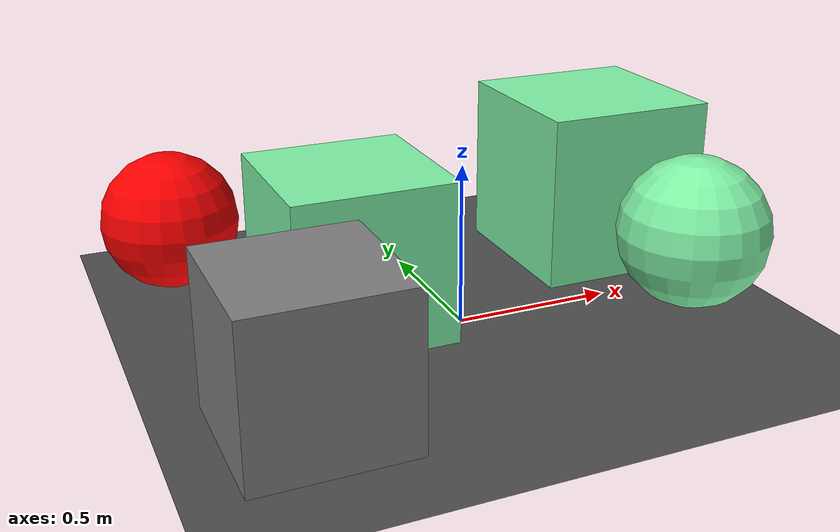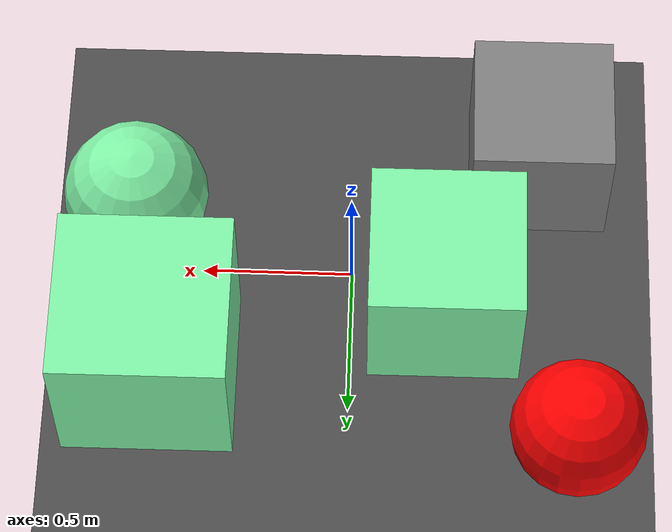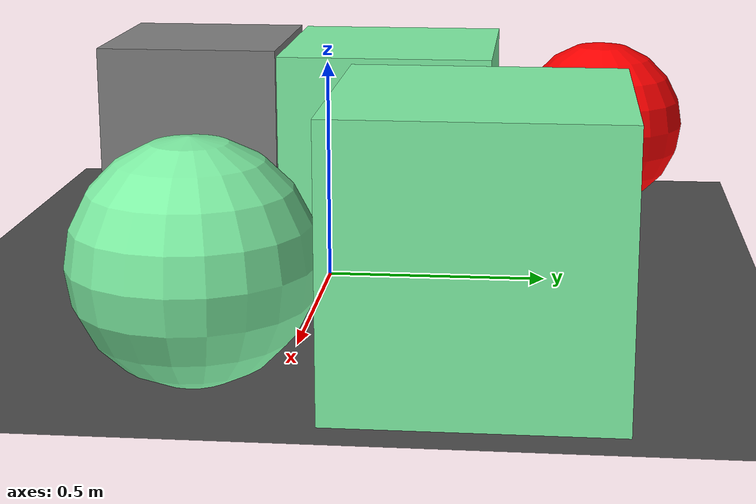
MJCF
<mujoco>
   <asset>
      <texture name="builtin_checker" builtin="checker" type="2d" rgb1="1 1 0" rgb2="0 0 1" width="200" height="200"/>
      <texture name="builtin_gradient" builtin="gradient" rgb1="0 .9 .3" rgb2="1 1 1" width="200" height="200"/>
      <texture name="builtin_flat" builtin="flat" rgb1="1 0 0" rgb2="1 0 0"  width="200" height="200"/>

      <material name="checker_mat" reflectance="0.9" texrepeat="3 3" texture="builtin_checker" texuniform="false" />
      <material name="gradient_mat" reflectance="1" texrepeat="1 1" texture="builtin_gradient" texuniform="true"/>
      <material name="flat_mat" reflectance="1" texrepeat="1 1" texture="builtin_flat" texuniform="true"/>
   </asset>

   <worldbody>
      <light diffuse=".9 .9 .9" pos="0 0 3" dir="0 0 -1"/>
     <geom type="plane" size="1 1 0.1" rgba="0.3 0.3 0.3 1"/>
<body pos="-0.74 0.64 0.22">
<joint type="free"/>
 <geom type="sphere" size="0.22 0.22 0.22" material="flat_mat" />
</body>
<body pos="-0.31 0.12 0.25">
<joint type="free"/>
 <geom type="box" size="0.25 0.25 0.25" material="gradient_mat" />
</body>
<body pos="-0.62 -0.42 0.23">
<joint type="free"/>
 <geom type="box" size="0.23 0.23 0.23" material="checker_mat" />
</body>
<body pos="0.65 0.38 0.28">
<joint type="free"/>
 <geom type="box" size="0.28 0.28 0.28" material="gradient_mat" />
</body>
<body pos="0.72 -0.16 0.24">
<joint type="free"/>
 <geom type="sphere" size="0.24 0.24 0.24" material="gradient_mat" />
</body><camera euler="0 0 0" fovy="60" name="camera_a" pos="0 0 2"></camera>   </worldbody>
</mujoco>
